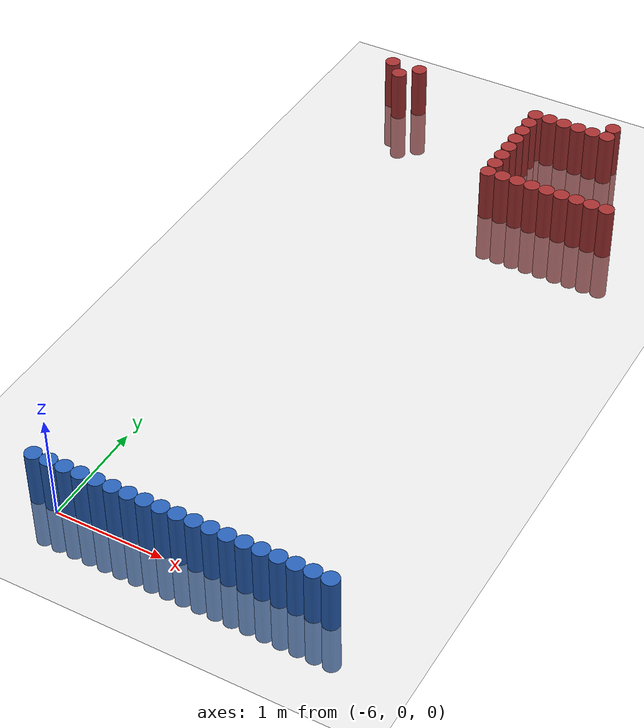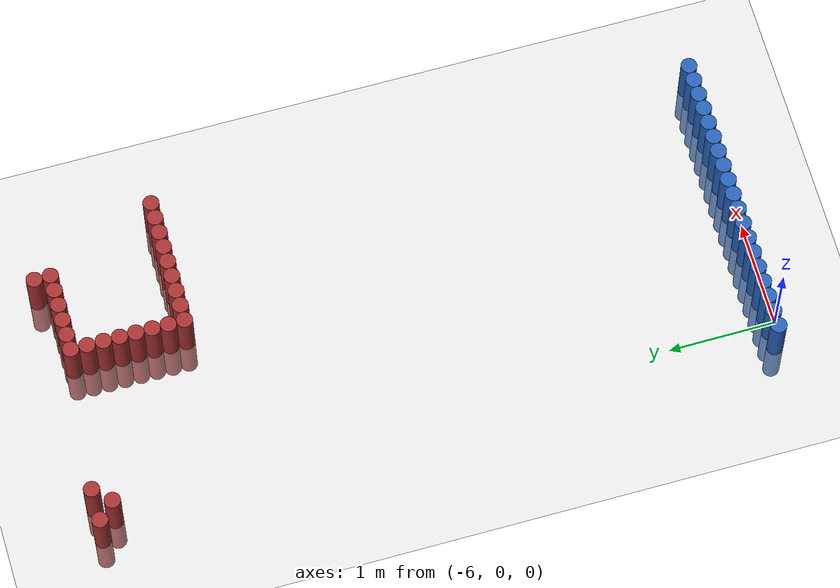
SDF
<sdf version="1.6">
 <world name="default">
  <model name="ground_plane">
   <static>1</static>
   <link name="link">
    <collision name="collision">
     <geometry><plane><normal>0 0 1</normal><size>100 100</size></plane></geometry>
     <surface><friction><ode><mu>100</mu><mu2>50</mu2></ode></friction></surface>
    </collision>
    <visual name="visual">
     <cast_shadows>0</cast_shadows>
     <geometry><plane><normal>0 0 1</normal><size>100 100</size></plane></geometry>
     <material>
      <script><uri>file://media/materials/scripts/gazebo.material</uri><name>Gazebo/Grey</name></script>
     </material>
    </visual>
   </link>
  </model>
  <model name="unit_cylinder_23">
   <static>1</static>
   <pose>-3.525000 0.075000 0.000000 0.000000 0.000000 0.000000</pose>
   <link name="link">
    <inertial>
     <mass>1</mass>
     <inertia><ixx>0.145833</ixx><ixy>0</ixy><ixz>0</ixz><iyy>0.145833</iyy><iyz>0</iyz><izz>0.125</izz></inertia>
    </inertial>
    <collision name="collision">
     <geometry><cylinder><radius>0.075000</radius><length>1</length></cylinder></geometry>
    </collision>
    <visual name="visual">
     <geometry><cylinder><radius>0.075000</radius><length>1</length></cylinder></geometry>
     <material>
      <ambient>0.152000 0.379000 0.720000 1</ambient>
      <diffuse>0.152000 0.379000 0.720000 1</diffuse>
     </material>
     <material>
      <script><name>Gazebo/Grey</name><uri>file://media/materials/scripts/gazebo.material</uri></script>
     </material>
    </visual>
   </link>
  </model>
  <model name="unit_cylinder_24">
   <static>1</static>
   <pose>-3.675000 0.075000 0.000000 0.000000 0.000000 0.000000</pose>
   <link name="link">
    <inertial>
     <mass>1</mass>
     <inertia><ixx>0.145833</ixx><ixy>0</ixy><ixz>0</ixz><iyy>0.145833</iyy><iyz>0</iyz><izz>0.125</izz></inertia>
    </inertial>
    <collision name="collision">
     <geometry><cylinder><radius>0.075000</radius><length>1</length></cylinder></geometry>
    </collision>
    <visual name="visual">
     <geometry><cylinder><radius>0.075000</radius><length>1</length></cylinder></geometry>
     <material>
      <ambient>0.152000 0.379000 0.720000 1</ambient>
      <diffuse>0.152000 0.379000 0.720000 1</diffuse>
     </material>
     <material>
      <script><name>Gazebo/Grey</name><uri>file://media/materials/scripts/gazebo.material</uri></script>
     </material>
    </visual>
   </link>
  </model>
  <model name="unit_cylinder_25">
   <static>1</static>
   <pose>-3.825000 0.075000 0.000000 0.000000 0.000000 0.000000</pose>
   <link name="link">
    <inertial>
     <mass>1</mass>
     <inertia><ixx>0.145833</ixx><ixy>0</ixy><ixz>0</ixz><iyy>0.145833</iyy><iyz>0</iyz><izz>0.125</izz></inertia>
    </inertial>
    <collision name="collision">
     <geometry><cylinder><radius>0.075000</radius><length>1</length></cylinder></geometry>
    </collision>
    <visual name="visual">
     <geometry><cylinder><radius>0.075000</radius><length>1</length></cylinder></geometry>
     <material>
      <ambient>0.152000 0.379000 0.720000 1</ambient>
      <diffuse>0.152000 0.379000 0.720000 1</diffuse>
     </material>
     <material>
      <script><name>Gazebo/Grey</name><uri>file://media/materials/scripts/gazebo.material</uri></script>
     </material>
    </visual>
   </link>
  </model>
  <model name="unit_cylinder_26">
   <static>1</static>
   <pose>-3.975000 0.075000 0.000000 0.000000 0.000000 0.000000</pose>
   <link name="link">
    <inertial>
     <mass>1</mass>
     <inertia><ixx>0.145833</ixx><ixy>0</ixy><ixz>0</ixz><iyy>0.145833</iyy><iyz>0</iyz><izz>0.125</izz></inertia>
    </inertial>
    <collision name="collision">
     <geometry><cylinder><radius>0.075000</radius><length>1</length></cylinder></geometry>
    </collision>
    <visual name="visual">
     <geometry><cylinder><radius>0.075000</radius><length>1</length></cylinder></geometry>
     <material>
      <ambient>0.152000 0.379000 0.720000 1</ambient>
      <diffuse>0.152000 0.379000 0.720000 1</diffuse>
     </material>
     <material>
      <script><name>Gazebo/Grey</name><uri>file://media/materials/scripts/gazebo.material</uri></script>
     </material>
    </visual>
   </link>
  </model>
  <model name="unit_cylinder_27">
   <static>1</static>
   <pose>-4.125000 0.075000 0.000000 0.000000 0.000000 0.000000</pose>
   <link name="link">
    <inertial>
     <mass>1</mass>
     <inertia><ixx>0.145833</ixx><ixy>0</ixy><ixz>0</ixz><iyy>0.145833</iyy><iyz>0</iyz><izz>0.125</izz></inertia>
    </inertial>
    <collision name="collision">
     <geometry><cylinder><radius>0.075000</radius><length>1</length></cylinder></geometry>
    </collision>
    <visual name="visual">
     <geometry><cylinder><radius>0.075000</radius><length>1</length></cylinder></geometry>
     <material>
      <ambient>0.152000 0.379000 0.720000 1</ambient>
      <diffuse>0.152000 0.379000 0.720000 1</diffuse>
     </material>
     <material>
      <script><name>Gazebo/Grey</name><uri>file://media/materials/scripts/gazebo.material</uri></script>
     </material>
    </visual>
   </link>
  </model>
  <model name="unit_cylinder_28">
   <static>1</static>
   <pose>-4.275000 0.075000 0.000000 0.000000 0.000000 0.000000</pose>
   <link name="link">
    <inertial>
     <mass>1</mass>
     <inertia><ixx>0.145833</ixx><ixy>0</ixy><ixz>0</ixz><iyy>0.145833</iyy><iyz>0</iyz><izz>0.125</izz></inertia>
    </inertial>
    <collision name="collision">
     <geometry><cylinder><radius>0.075000</radius><length>1</length></cylinder></geometry>
    </collision>
    <visual name="visual">
     <geometry><cylinder><radius>0.075000</radius><length>1</length></cylinder></geometry>
     <material>
      <ambient>0.152000 0.379000 0.720000 1</ambient>
      <diffuse>0.152000 0.379000 0.720000 1</diffuse>
     </material>
     <material>
      <script><name>Gazebo/Grey</name><uri>file://media/materials/scripts/gazebo.material</uri></script>
     </material>
    </visual>
   </link>
  </model>
  <model name="unit_cylinder_29">
   <static>1</static>
   <pose>-4.425000 0.075000 0.000000 0.000000 0.000000 0.000000</pose>
   <link name="link">
    <inertial>
     <mass>1</mass>
     <inertia><ixx>0.145833</ixx><ixy>0</ixy><ixz>0</ixz><iyy>0.145833</iyy><iyz>0</iyz><izz>0.125</izz></inertia>
    </inertial>
    <collision name="collision">
     <geometry><cylinder><radius>0.075000</radius><length>1</length></cylinder></geometry>
    </collision>
    <visual name="visual">
     <geometry><cylinder><radius>0.075000</radius><length>1</length></cylinder></geometry>
     <material>
      <ambient>0.152000 0.379000 0.720000 1</ambient>
      <diffuse>0.152000 0.379000 0.720000 1</diffuse>
     </material>
     <material>
      <script><name>Gazebo/Grey</name><uri>file://media/materials/scripts/gazebo.material</uri></script>
     </material>
    </visual>
   </link>
  </model>
  <model name="unit_cylinder_30">
   <static>1</static>
   <pose>-4.575000 0.075000 0.000000 0.000000 0.000000 0.000000</pose>
   <link name="link">
    <inertial>
     <mass>1</mass>
     <inertia><ixx>0.145833</ixx><ixy>0</ixy><ixz>0</ixz><iyy>0.145833</iyy><iyz>0</iyz><izz>0.125</izz></inertia>
    </inertial>
    <collision name="collision">
     <geometry><cylinder><radius>0.075000</radius><length>1</length></cylinder></geometry>
    </collision>
    <visual name="visual">
     <geometry><cylinder><radius>0.075000</radius><length>1</length></cylinder></geometry>
     <material>
      <ambient>0.152000 0.379000 0.720000 1</ambient>
      <diffuse>0.152000 0.379000 0.720000 1</diffuse>
     </material>
     <material>
      <script><name>Gazebo/Grey</name><uri>file://media/materials/scripts/gazebo.material</uri></script>
     </material>
    </visual>
   </link>
  </model>
  <model name="unit_cylinder_31">
   <static>1</static>
   <pose>-4.725000 0.075000 0.000000 0.000000 0.000000 0.000000</pose>
   <link name="link">
    <inertial>
     <mass>1</mass>
     <inertia><ixx>0.145833</ixx><ixy>0</ixy><ixz>0</ixz><iyy>0.145833</iyy><iyz>0</iyz><izz>0.125</izz></inertia>
    </inertial>
    <collision name="collision">
     <geometry><cylinder><radius>0.075000</radius><length>1</length></cylinder></geometry>
    </collision>
    <visual name="visual">
     <geometry><cylinder><radius>0.075000</radius><length>1</length></cylinder></geometry>
     <material>
      <ambient>0.152000 0.379000 0.720000 1</ambient>
      <diffuse>0.152000 0.379000 0.720000 1</diffuse>
     </material>
     <material>
      <script><name>Gazebo/Grey</name><uri>file://media/materials/scripts/gazebo.material</uri></script>
     </material>
    </visual>
   </link>
  </model>
  <model name="unit_cylinder_32">
   <static>1</static>
   <pose>-4.875000 0.075000 0.000000 0.000000 0.000000 0.000000</pose>
   <link name="link">
    <inertial>
     <mass>1</mass>
     <inertia><ixx>0.145833</ixx><ixy>0</ixy><ixz>0</ixz><iyy>0.145833</iyy><iyz>0</iyz><izz>0.125</izz></inertia>
    </inertial>
    <collision name="collision">
     <geometry><cylinder><radius>0.075000</radius><length>1</length></cylinder></geometry>
    </collision>
    <visual name="visual">
     <geometry><cylinder><radius>0.075000</radius><length>1</length></cylinder></geometry>
     <material>
      <ambient>0.152000 0.379000 0.720000 1</ambient>
      <diffuse>0.152000 0.379000 0.720000 1</diffuse>
     </material>
     <material>
      <script><name>Gazebo/Grey</name><uri>file://media/materials/scripts/gazebo.material</uri></script>
     </material>
    </visual>
   </link>
  </model>
  <model name="unit_cylinder_33">
   <static>1</static>
   <pose>-5.025000 0.075000 0.000000 0.000000 0.000000 0.000000</pose>
   <link name="link">
    <inertial>
     <mass>1</mass>
     <inertia><ixx>0.145833</ixx><ixy>0</ixy><ixz>0</ixz><iyy>0.145833</iyy><iyz>0</iyz><izz>0.125</izz></inertia>
    </inertial>
    <collision name="collision">
     <geometry><cylinder><radius>0.075000</radius><length>1</length></cylinder></geometry>
    </collision>
    <visual name="visual">
     <geometry><cylinder><radius>0.075000</radius><length>1</length></cylinder></geometry>
     <material>
      <ambient>0.152000 0.379000 0.720000 1</ambient>
      <diffuse>0.152000 0.379000 0.720000 1</diffuse>
     </material>
     <material>
      <script><name>Gazebo/Grey</name><uri>file://media/materials/scripts/gazebo.material</uri></script>
     </material>
    </visual>
   </link>
  </model>
  <model name="unit_cylinder_34">
   <static>1</static>
   <pose>-5.175000 0.075000 0.000000 0.000000 0.000000 0.000000</pose>
   <link name="link">
    <inertial>
     <mass>1</mass>
     <inertia><ixx>0.145833</ixx><ixy>0</ixy><ixz>0</ixz><iyy>0.145833</iyy><iyz>0</iyz><izz>0.125</izz></inertia>
    </inertial>
    <collision name="collision">
     <geometry><cylinder><radius>0.075000</radius><length>1</length></cylinder></geometry>
    </collision>
    <visual name="visual">
     <geometry><cylinder><radius>0.075000</radius><length>1</length></cylinder></geometry>
     <material>
      <ambient>0.152000 0.379000 0.720000 1</ambient>
      <diffuse>0.152000 0.379000 0.720000 1</diffuse>
     </material>
     <material>
      <script><name>Gazebo/Grey</name><uri>file://media/materials/scripts/gazebo.material</uri></script>
     </material>
    </visual>
   </link>
  </model>
  <model name="unit_cylinder_35">
   <static>1</static>
   <pose>-5.325000 0.075000 0.000000 0.000000 0.000000 0.000000</pose>
   <link name="link">
    <inertial>
     <mass>1</mass>
     <inertia><ixx>0.145833</ixx><ixy>0</ixy><ixz>0</ixz><iyy>0.145833</iyy><iyz>0</iyz><izz>0.125</izz></inertia>
    </inertial>
    <collision name="collision">
     <geometry><cylinder><radius>0.075000</radius><length>1</length></cylinder></geometry>
    </collision>
    <visual name="visual">
     <geometry><cylinder><radius>0.075000</radius><length>1</length></cylinder></geometry>
     <material>
      <ambient>0.152000 0.379000 0.720000 1</ambient>
      <diffuse>0.152000 0.379000 0.720000 1</diffuse>
     </material>
     <material>
      <script><name>Gazebo/Grey</name><uri>file://media/materials/scripts/gazebo.material</uri></script>
     </material>
    </visual>
   </link>
  </model>
  <model name="unit_cylinder_36">
   <static>1</static>
   <pose>-5.475000 0.075000 0.000000 0.000000 0.000000 0.000000</pose>
   <link name="link">
    <inertial>
     <mass>1</mass>
     <inertia><ixx>0.145833</ixx><ixy>0</ixy><ixz>0</ixz><iyy>0.145833</iyy><iyz>0</iyz><izz>0.125</izz></inertia>
    </inertial>
    <collision name="collision">
     <geometry><cylinder><radius>0.075000</radius><length>1</length></cylinder></geometry>
    </collision>
    <visual name="visual">
     <geometry><cylinder><radius>0.075000</radius><length>1</length></cylinder></geometry>
     <material>
      <ambient>0.152000 0.379000 0.720000 1</ambient>
      <diffuse>0.152000 0.379000 0.720000 1</diffuse>
     </material>
     <material>
      <script><name>Gazebo/Grey</name><uri>file://media/materials/scripts/gazebo.material</uri></script>
     </material>
    </visual>
   </link>
  </model>
  <model name="unit_cylinder_37">
   <static>1</static>
   <pose>-5.625000 0.075000 0.000000 0.000000 0.000000 0.000000</pose>
   <link name="link">
    <inertial>
     <mass>1</mass>
     <inertia><ixx>0.145833</ixx><ixy>0</ixy><ixz>0</ixz><iyy>0.145833</iyy><iyz>0</iyz><izz>0.125</izz></inertia>
    </inertial>
    <collision name="collision">
     <geometry><cylinder><radius>0.075000</radius><length>1</length></cylinder></geometry>
    </collision>
    <visual name="visual">
     <geometry><cylinder><radius>0.075000</radius><length>1</length></cylinder></geometry>
     <material>
      <ambient>0.152000 0.379000 0.720000 1</ambient>
      <diffuse>0.152000 0.379000 0.720000 1</diffuse>
     </material>
     <material>
      <script><name>Gazebo/Grey</name><uri>file://media/materials/scripts/gazebo.material</uri></script>
     </material>
    </visual>
   </link>
  </model>
  <model name="unit_cylinder_38">
   <static>1</static>
   <pose>-5.775000 0.075000 0.000000 0.000000 0.000000 0.000000</pose>
   <link name="link">
    <inertial>
     <mass>1</mass>
     <inertia><ixx>0.145833</ixx><ixy>0</ixy><ixz>0</ixz><iyy>0.145833</iyy><iyz>0</iyz><izz>0.125</izz></inertia>
    </inertial>
    <collision name="collision">
     <geometry><cylinder><radius>0.075000</radius><length>1</length></cylinder></geometry>
    </collision>
    <visual name="visual">
     <geometry><cylinder><radius>0.075000</radius><length>1</length></cylinder></geometry>
     <material>
      <ambient>0.152000 0.379000 0.720000 1</ambient>
      <diffuse>0.152000 0.379000 0.720000 1</diffuse>
     </material>
     <material>
      <script><name>Gazebo/Grey</name><uri>file://media/materials/scripts/gazebo.material</uri></script>
     </material>
    </visual>
   </link>
  </model>
  <model name="unit_cylinder_39">
   <static>1</static>
   <pose>-5.925000 0.075000 0.000000 0.000000 0.000000 0.000000</pose>
   <link name="link">
    <inertial>
     <mass>1</mass>
     <inertia><ixx>0.145833</ixx><ixy>0</ixy><ixz>0</ixz><iyy>0.145833</iyy><iyz>0</iyz><izz>0.125</izz></inertia>
    </inertial>
    <collision name="collision">
     <geometry><cylinder><radius>0.075000</radius><length>1</length></cylinder></geometry>
    </collision>
    <visual name="visual">
     <geometry><cylinder><radius>0.075000</radius><length>1</length></cylinder></geometry>
     <material>
      <ambient>0.152000 0.379000 0.720000 1</ambient>
      <diffuse>0.152000 0.379000 0.720000 1</diffuse>
     </material>
     <material>
      <script><name>Gazebo/Grey</name><uri>file://media/materials/scripts/gazebo.material</uri></script>
     </material>
    </visual>
   </link>
  </model>
  <model name="unit_cylinder_40">
   <static>1</static>
   <pose>-6.075000 0.075000 0.000000 0.000000 0.000000 0.000000</pose>
   <link name="link">
    <inertial>
     <mass>1</mass>
     <inertia><ixx>0.145833</ixx><ixy>0</ixy><ixz>0</ixz><iyy>0.145833</iyy><iyz>0</iyz><izz>0.125</izz></inertia>
    </inertial>
    <collision name="collision">
     <geometry><cylinder><radius>0.075000</radius><length>1</length></cylinder></geometry>
    </collision>
    <visual name="visual">
     <geometry><cylinder><radius>0.075000</radius><length>1</length></cylinder></geometry>
     <material>
      <ambient>0.152000 0.379000 0.720000 1</ambient>
      <diffuse>0.152000 0.379000 0.720000 1</diffuse>
     </material>
     <material>
      <script><name>Gazebo/Grey</name><uri>file://media/materials/scripts/gazebo.material</uri></script>
     </material>
    </visual>
   </link>
  </model>
  <model name="unit_cylinder_41">
   <static>1</static>
   <pose>-6.225000 0.075000 0.000000 0.000000 0.000000 0.000000</pose>
   <link name="link">
    <inertial>
     <mass>1</mass>
     <inertia><ixx>0.145833</ixx><ixy>0</ixy><ixz>0</ixz><iyy>0.145833</iyy><iyz>0</iyz><izz>0.125</izz></inertia>
    </inertial>
    <collision name="collision">
     <geometry><cylinder><radius>0.075000</radius><length>1</length></cylinder></geometry>
    </collision>
    <visual name="visual">
     <geometry><cylinder><radius>0.075000</radius><length>1</length></cylinder></geometry>
     <material>
      <ambient>0.152000 0.379000 0.720000 1</ambient>
      <diffuse>0.152000 0.379000 0.720000 1</diffuse>
     </material>
     <material>
      <script><name>Gazebo/Grey</name><uri>file://media/materials/scripts/gazebo.material</uri></script>
     </material>
    </visual>
   </link>
  </model>
  <model name="unit_cylinder_227">
   <static>1</static>
   <pose>-6.375000 6.375000 0.000000 0.000000 0.000000 0.000000</pose>
   <link name="link">
    <inertial>
     <mass>1</mass>
     <inertia><ixx>0.145833</ixx><ixy>0</ixy><ixz>0</ixz><iyy>0.145833</iyy><iyz>0</iyz><izz>0.125</izz></inertia>
    </inertial>
    <collision name="collision">
     <geometry><cylinder><radius>0.075000</radius><length>1</length></cylinder></geometry>
    </collision>
    <visual name="visual">
     <geometry><cylinder><radius>0.075000</radius><length>1</length></cylinder></geometry>
     <material>
      <ambient>0.648000 0.192000 0.192000 1</ambient>
      <diffuse>0.648000 0.192000 0.192000 1</diffuse>
     </material>
     <material>
      <script><name>Gazebo/Grey</name><uri>file://media/materials/scripts/gazebo.material</uri></script>
     </material>
    </visual>
   </link>
  </model>
  <model name="unit_cylinder_233">
   <static>1</static>
   <pose>-6.225000 6.225000 0.000000 0.000000 0.000000 0.000000</pose>
   <link name="link">
    <inertial>
     <mass>1</mass>
     <inertia><ixx>0.145833</ixx><ixy>0</ixy><ixz>0</ixz><iyy>0.145833</iyy><iyz>0</iyz><izz>0.125</izz></inertia>
    </inertial>
    <collision name="collision">
     <geometry><cylinder><radius>0.075000</radius><length>1</length></cylinder></geometry>
    </collision>
    <visual name="visual">
     <geometry><cylinder><radius>0.075000</radius><length>1</length></cylinder></geometry>
     <material>
      <ambient>0.648000 0.192000 0.192000 1</ambient>
      <diffuse>0.648000 0.192000 0.192000 1</diffuse>
     </material>
     <material>
      <script><name>Gazebo/Grey</name><uri>file://media/materials/scripts/gazebo.material</uri></script>
     </material>
    </visual>
   </link>
  </model>
  <model name="unit_cylinder_247">
   <static>1</static>
   <pose>-6.075000 6.375000 0.000000 0.000000 0.000000 0.000000</pose>
   <link name="link">
    <inertial>
     <mass>1</mass>
     <inertia><ixx>0.145833</ixx><ixy>0</ixy><ixz>0</ixz><iyy>0.145833</iyy><iyz>0</iyz><izz>0.125</izz></inertia>
    </inertial>
    <collision name="collision">
     <geometry><cylinder><radius>0.075000</radius><length>1</length></cylinder></geometry>
    </collision>
    <visual name="visual">
     <geometry><cylinder><radius>0.075000</radius><length>1</length></cylinder></geometry>
     <material>
      <ambient>0.648000 0.192000 0.192000 1</ambient>
      <diffuse>0.648000 0.192000 0.192000 1</diffuse>
     </material>
     <material>
      <script><name>Gazebo/Grey</name><uri>file://media/materials/scripts/gazebo.material</uri></script>
     </material>
    </visual>
   </link>
  </model>
  <model name="unit_cylinder_317">
   <static>1</static>
   <pose>-4.725000 5.175000 0.000000 0.000000 0.000000 0.000000</pose>
   <link name="link">
    <inertial>
     <mass>1</mass>
     <inertia><ixx>0.145833</ixx><ixy>0</ixy><ixz>0</ixz><iyy>0.145833</iyy><iyz>0</iyz><izz>0.125</izz></inertia>
    </inertial>
    <collision name="collision">
     <geometry><cylinder><radius>0.075000</radius><length>1</length></cylinder></geometry>
    </collision>
    <visual name="visual">
     <geometry><cylinder><radius>0.075000</radius><length>1</length></cylinder></geometry>
     <material>
      <ambient>0.648000 0.192000 0.192000 1</ambient>
      <diffuse>0.648000 0.192000 0.192000 1</diffuse>
     </material>
     <material>
      <script><name>Gazebo/Grey</name><uri>file://media/materials/scripts/gazebo.material</uri></script>
     </material>
    </visual>
   </link>
  </model>
  <model name="unit_cylinder_318">
   <static>1</static>
   <pose>-4.725000 5.325000 0.000000 0.000000 0.000000 0.000000</pose>
   <link name="link">
    <inertial>
     <mass>1</mass>
     <inertia><ixx>0.145833</ixx><ixy>0</ixy><ixz>0</ixz><iyy>0.145833</iyy><iyz>0</iyz><izz>0.125</izz></inertia>
    </inertial>
    <collision name="collision">
     <geometry><cylinder><radius>0.075000</radius><length>1</length></cylinder></geometry>
    </collision>
    <visual name="visual">
     <geometry><cylinder><radius>0.075000</radius><length>1</length></cylinder></geometry>
     <material>
      <ambient>0.648000 0.192000 0.192000 1</ambient>
      <diffuse>0.648000 0.192000 0.192000 1</diffuse>
     </material>
     <material>
      <script><name>Gazebo/Grey</name><uri>file://media/materials/scripts/gazebo.material</uri></script>
     </material>
    </visual>
   </link>
  </model>
  <model name="unit_cylinder_319">
   <static>1</static>
   <pose>-4.725000 5.475000 0.000000 0.000000 0.000000 0.000000</pose>
   <link name="link">
    <inertial>
     <mass>1</mass>
     <inertia><ixx>0.145833</ixx><ixy>0</ixy><ixz>0</ixz><iyy>0.145833</iyy><iyz>0</iyz><izz>0.125</izz></inertia>
    </inertial>
    <collision name="collision">
     <geometry><cylinder><radius>0.075000</radius><length>1</length></cylinder></geometry>
    </collision>
    <visual name="visual">
     <geometry><cylinder><radius>0.075000</radius><length>1</length></cylinder></geometry>
     <material>
      <ambient>0.648000 0.192000 0.192000 1</ambient>
      <diffuse>0.648000 0.192000 0.192000 1</diffuse>
     </material>
     <material>
      <script><name>Gazebo/Grey</name><uri>file://media/materials/scripts/gazebo.material</uri></script>
     </material>
    </visual>
   </link>
  </model>
  <model name="unit_cylinder_320">
   <static>1</static>
   <pose>-4.725000 5.625000 0.000000 0.000000 0.000000 0.000000</pose>
   <link name="link">
    <inertial>
     <mass>1</mass>
     <inertia><ixx>0.145833</ixx><ixy>0</ixy><ixz>0</ixz><iyy>0.145833</iyy><iyz>0</iyz><izz>0.125</izz></inertia>
    </inertial>
    <collision name="collision">
     <geometry><cylinder><radius>0.075000</radius><length>1</length></cylinder></geometry>
    </collision>
    <visual name="visual">
     <geometry><cylinder><radius>0.075000</radius><length>1</length></cylinder></geometry>
     <material>
      <ambient>0.648000 0.192000 0.192000 1</ambient>
      <diffuse>0.648000 0.192000 0.192000 1</diffuse>
     </material>
     <material>
      <script><name>Gazebo/Grey</name><uri>file://media/materials/scripts/gazebo.material</uri></script>
     </material>
    </visual>
   </link>
  </model>
  <model name="unit_cylinder_321">
   <static>1</static>
   <pose>-4.725000 5.775000 0.000000 0.000000 0.000000 0.000000</pose>
   <link name="link">
    <inertial>
     <mass>1</mass>
     <inertia><ixx>0.145833</ixx><ixy>0</ixy><ixz>0</ixz><iyy>0.145833</iyy><iyz>0</iyz><izz>0.125</izz></inertia>
    </inertial>
    <collision name="collision">
     <geometry><cylinder><radius>0.075000</radius><length>1</length></cylinder></geometry>
    </collision>
    <visual name="visual">
     <geometry><cylinder><radius>0.075000</radius><length>1</length></cylinder></geometry>
     <material>
      <ambient>0.648000 0.192000 0.192000 1</ambient>
      <diffuse>0.648000 0.192000 0.192000 1</diffuse>
     </material>
     <material>
      <script><name>Gazebo/Grey</name><uri>file://media/materials/scripts/gazebo.material</uri></script>
     </material>
    </visual>
   </link>
  </model>
  <model name="unit_cylinder_322">
   <static>1</static>
   <pose>-4.725000 5.925000 0.000000 0.000000 0.000000 0.000000</pose>
   <link name="link">
    <inertial>
     <mass>1</mass>
     <inertia><ixx>0.145833</ixx><ixy>0</ixy><ixz>0</ixz><iyy>0.145833</iyy><iyz>0</iyz><izz>0.125</izz></inertia>
    </inertial>
    <collision name="collision">
     <geometry><cylinder><radius>0.075000</radius><length>1</length></cylinder></geometry>
    </collision>
    <visual name="visual">
     <geometry><cylinder><radius>0.075000</radius><length>1</length></cylinder></geometry>
     <material>
      <ambient>0.648000 0.192000 0.192000 1</ambient>
      <diffuse>0.648000 0.192000 0.192000 1</diffuse>
     </material>
     <material>
      <script><name>Gazebo/Grey</name><uri>file://media/materials/scripts/gazebo.material</uri></script>
     </material>
    </visual>
   </link>
  </model>
  <model name="unit_cylinder_323">
   <static>1</static>
   <pose>-4.725000 6.075000 0.000000 0.000000 0.000000 0.000000</pose>
   <link name="link">
    <inertial>
     <mass>1</mass>
     <inertia><ixx>0.145833</ixx><ixy>0</ixy><ixz>0</ixz><iyy>0.145833</iyy><iyz>0</iyz><izz>0.125</izz></inertia>
    </inertial>
    <collision name="collision">
     <geometry><cylinder><radius>0.075000</radius><length>1</length></cylinder></geometry>
    </collision>
    <visual name="visual">
     <geometry><cylinder><radius>0.075000</radius><length>1</length></cylinder></geometry>
     <material>
      <ambient>0.648000 0.192000 0.192000 1</ambient>
      <diffuse>0.648000 0.192000 0.192000 1</diffuse>
     </material>
     <material>
      <script><name>Gazebo/Grey</name><uri>file://media/materials/scripts/gazebo.material</uri></script>
     </material>
    </visual>
   </link>
  </model>
  <model name="unit_cylinder_324">
   <static>1</static>
   <pose>-4.725000 6.225000 0.000000 0.000000 0.000000 0.000000</pose>
   <link name="link">
    <inertial>
     <mass>1</mass>
     <inertia><ixx>0.145833</ixx><ixy>0</ixy><ixz>0</ixz><iyy>0.145833</iyy><iyz>0</iyz><izz>0.125</izz></inertia>
    </inertial>
    <collision name="collision">
     <geometry><cylinder><radius>0.075000</radius><length>1</length></cylinder></geometry>
    </collision>
    <visual name="visual">
     <geometry><cylinder><radius>0.075000</radius><length>1</length></cylinder></geometry>
     <material>
      <ambient>0.648000 0.192000 0.192000 1</ambient>
      <diffuse>0.648000 0.192000 0.192000 1</diffuse>
     </material>
     <material>
      <script><name>Gazebo/Grey</name><uri>file://media/materials/scripts/gazebo.material</uri></script>
     </material>
    </visual>
   </link>
  </model>
  <model name="unit_cylinder_325">
   <static>1</static>
   <pose>-4.575000 5.175000 0.000000 0.000000 0.000000 0.000000</pose>
   <link name="link">
    <inertial>
     <mass>1</mass>
     <inertia><ixx>0.145833</ixx><ixy>0</ixy><ixz>0</ixz><iyy>0.145833</iyy><iyz>0</iyz><izz>0.125</izz></inertia>
    </inertial>
    <collision name="collision">
     <geometry><cylinder><radius>0.075000</radius><length>1</length></cylinder></geometry>
    </collision>
    <visual name="visual">
     <geometry><cylinder><radius>0.075000</radius><length>1</length></cylinder></geometry>
     <material>
      <ambient>0.648000 0.192000 0.192000 1</ambient>
      <diffuse>0.648000 0.192000 0.192000 1</diffuse>
     </material>
     <material>
      <script><name>Gazebo/Grey</name><uri>file://media/materials/scripts/gazebo.material</uri></script>
     </material>
    </visual>
   </link>
  </model>
  <model name="unit_cylinder_326">
   <static>1</static>
   <pose>-4.575000 6.225000 0.000000 0.000000 0.000000 0.000000</pose>
   <link name="link">
    <inertial>
     <mass>1</mass>
     <inertia><ixx>0.145833</ixx><ixy>0</ixy><ixz>0</ixz><iyy>0.145833</iyy><iyz>0</iyz><izz>0.125</izz></inertia>
    </inertial>
    <collision name="collision">
     <geometry><cylinder><radius>0.075000</radius><length>1</length></cylinder></geometry>
    </collision>
    <visual name="visual">
     <geometry><cylinder><radius>0.075000</radius><length>1</length></cylinder></geometry>
     <material>
      <ambient>0.648000 0.192000 0.192000 1</ambient>
      <diffuse>0.648000 0.192000 0.192000 1</diffuse>
     </material>
     <material>
      <script><name>Gazebo/Grey</name><uri>file://media/materials/scripts/gazebo.material</uri></script>
     </material>
    </visual>
   </link>
  </model>
  <model name="unit_cylinder_327">
   <static>1</static>
   <pose>-4.425000 5.175000 0.000000 0.000000 0.000000 0.000000</pose>
   <link name="link">
    <inertial>
     <mass>1</mass>
     <inertia><ixx>0.145833</ixx><ixy>0</ixy><ixz>0</ixz><iyy>0.145833</iyy><iyz>0</iyz><izz>0.125</izz></inertia>
    </inertial>
    <collision name="collision">
     <geometry><cylinder><radius>0.075000</radius><length>1</length></cylinder></geometry>
    </collision>
    <visual name="visual">
     <geometry><cylinder><radius>0.075000</radius><length>1</length></cylinder></geometry>
     <material>
      <ambient>0.648000 0.192000 0.192000 1</ambient>
      <diffuse>0.648000 0.192000 0.192000 1</diffuse>
     </material>
     <material>
      <script><name>Gazebo/Grey</name><uri>file://media/materials/scripts/gazebo.material</uri></script>
     </material>
    </visual>
   </link>
  </model>
  <model name="unit_cylinder_328">
   <static>1</static>
   <pose>-4.425000 6.225000 0.000000 0.000000 0.000000 0.000000</pose>
   <link name="link">
    <inertial>
     <mass>1</mass>
     <inertia><ixx>0.145833</ixx><ixy>0</ixy><ixz>0</ixz><iyy>0.145833</iyy><iyz>0</iyz><izz>0.125</izz></inertia>
    </inertial>
    <collision name="collision">
     <geometry><cylinder><radius>0.075000</radius><length>1</length></cylinder></geometry>
    </collision>
    <visual name="visual">
     <geometry><cylinder><radius>0.075000</radius><length>1</length></cylinder></geometry>
     <material>
      <ambient>0.648000 0.192000 0.192000 1</ambient>
      <diffuse>0.648000 0.192000 0.192000 1</diffuse>
     </material>
     <material>
      <script><name>Gazebo/Grey</name><uri>file://media/materials/scripts/gazebo.material</uri></script>
     </material>
    </visual>
   </link>
  </model>
  <model name="unit_cylinder_329">
   <static>1</static>
   <pose>-4.275000 5.175000 0.000000 0.000000 0.000000 0.000000</pose>
   <link name="link">
    <inertial>
     <mass>1</mass>
     <inertia><ixx>0.145833</ixx><ixy>0</ixy><ixz>0</ixz><iyy>0.145833</iyy><iyz>0</iyz><izz>0.125</izz></inertia>
    </inertial>
    <collision name="collision">
     <geometry><cylinder><radius>0.075000</radius><length>1</length></cylinder></geometry>
    </collision>
    <visual name="visual">
     <geometry><cylinder><radius>0.075000</radius><length>1</length></cylinder></geometry>
     <material>
      <ambient>0.648000 0.192000 0.192000 1</ambient>
      <diffuse>0.648000 0.192000 0.192000 1</diffuse>
     </material>
     <material>
      <script><name>Gazebo/Grey</name><uri>file://media/materials/scripts/gazebo.material</uri></script>
     </material>
    </visual>
   </link>
  </model>
  <model name="unit_cylinder_330">
   <static>1</static>
   <pose>-4.275000 6.225000 0.000000 0.000000 0.000000 0.000000</pose>
   <link name="link">
    <inertial>
     <mass>1</mass>
     <inertia><ixx>0.145833</ixx><ixy>0</ixy><ixz>0</ixz><iyy>0.145833</iyy><iyz>0</iyz><izz>0.125</izz></inertia>
    </inertial>
    <collision name="collision">
     <geometry><cylinder><radius>0.075000</radius><length>1</length></cylinder></geometry>
    </collision>
    <visual name="visual">
     <geometry><cylinder><radius>0.075000</radius><length>1</length></cylinder></geometry>
     <material>
      <ambient>0.648000 0.192000 0.192000 1</ambient>
      <diffuse>0.648000 0.192000 0.192000 1</diffuse>
     </material>
     <material>
      <script><name>Gazebo/Grey</name><uri>file://media/materials/scripts/gazebo.material</uri></script>
     </material>
    </visual>
   </link>
  </model>
  <model name="unit_cylinder_331">
   <static>1</static>
   <pose>-4.125000 5.175000 0.000000 0.000000 0.000000 0.000000</pose>
   <link name="link">
    <inertial>
     <mass>1</mass>
     <inertia><ixx>0.145833</ixx><ixy>0</ixy><ixz>0</ixz><iyy>0.145833</iyy><iyz>0</iyz><izz>0.125</izz></inertia>
    </inertial>
    <collision name="collision">
     <geometry><cylinder><radius>0.075000</radius><length>1</length></cylinder></geometry>
    </collision>
    <visual name="visual">
     <geometry><cylinder><radius>0.075000</radius><length>1</length></cylinder></geometry>
     <material>
      <ambient>0.648000 0.192000 0.192000 1</ambient>
      <diffuse>0.648000 0.192000 0.192000 1</diffuse>
     </material>
     <material>
      <script><name>Gazebo/Grey</name><uri>file://media/materials/scripts/gazebo.material</uri></script>
     </material>
    </visual>
   </link>
  </model>
  <model name="unit_cylinder_332">
   <static>1</static>
   <pose>-4.125000 6.225000 0.000000 0.000000 0.000000 0.000000</pose>
   <link name="link">
    <inertial>
     <mass>1</mass>
     <inertia><ixx>0.145833</ixx><ixy>0</ixy><ixz>0</ixz><iyy>0.145833</iyy><iyz>0</iyz><izz>0.125</izz></inertia>
    </inertial>
    <collision name="collision">
     <geometry><cylinder><radius>0.075000</radius><length>1</length></cylinder></geometry>
    </collision>
    <visual name="visual">
     <geometry><cylinder><radius>0.075000</radius><length>1</length></cylinder></geometry>
     <material>
      <ambient>0.648000 0.192000 0.192000 1</ambient>
      <diffuse>0.648000 0.192000 0.192000 1</diffuse>
     </material>
     <material>
      <script><name>Gazebo/Grey</name><uri>file://media/materials/scripts/gazebo.material</uri></script>
     </material>
    </visual>
   </link>
  </model>
  <model name="unit_cylinder_333">
   <static>1</static>
   <pose>-3.975000 5.175000 0.000000 0.000000 0.000000 0.000000</pose>
   <link name="link">
    <inertial>
     <mass>1</mass>
     <inertia><ixx>0.145833</ixx><ixy>0</ixy><ixz>0</ixz><iyy>0.145833</iyy><iyz>0</iyz><izz>0.125</izz></inertia>
    </inertial>
    <collision name="collision">
     <geometry><cylinder><radius>0.075000</radius><length>1</length></cylinder></geometry>
    </collision>
    <visual name="visual">
     <geometry><cylinder><radius>0.075000</radius><length>1</length></cylinder></geometry>
     <material>
      <ambient>0.648000 0.192000 0.192000 1</ambient>
      <diffuse>0.648000 0.192000 0.192000 1</diffuse>
     </material>
     <material>
      <script><name>Gazebo/Grey</name><uri>file://media/materials/scripts/gazebo.material</uri></script>
     </material>
    </visual>
   </link>
  </model>
  <model name="unit_cylinder_334">
   <static>1</static>
   <pose>-3.975000 6.225000 0.000000 0.000000 0.000000 0.000000</pose>
   <link name="link">
    <inertial>
     <mass>1</mass>
     <inertia><ixx>0.145833</ixx><ixy>0</ixy><ixz>0</ixz><iyy>0.145833</iyy><iyz>0</iyz><izz>0.125</izz></inertia>
    </inertial>
    <collision name="collision">
     <geometry><cylinder><radius>0.075000</radius><length>1</length></cylinder></geometry>
    </collision>
    <visual name="visual">
     <geometry><cylinder><radius>0.075000</radius><length>1</length></cylinder></geometry>
     <material>
      <ambient>0.648000 0.192000 0.192000 1</ambient>
      <diffuse>0.648000 0.192000 0.192000 1</diffuse>
     </material>
     <material>
      <script><name>Gazebo/Grey</name><uri>file://media/materials/scripts/gazebo.material</uri></script>
     </material>
    </visual>
   </link>
  </model>
  <model name="unit_cylinder_335">
   <static>1</static>
   <pose>-3.975000 6.375000 0.000000 0.000000 0.000000 0.000000</pose>
   <link name="link">
    <inertial>
     <mass>1</mass>
     <inertia><ixx>0.145833</ixx><ixy>0</ixy><ixz>0</ixz><iyy>0.145833</iyy><iyz>0</iyz><izz>0.125</izz></inertia>
    </inertial>
    <collision name="collision">
     <geometry><cylinder><radius>0.075000</radius><length>1</length></cylinder></geometry>
    </collision>
    <visual name="visual">
     <geometry><cylinder><radius>0.075000</radius><length>1</length></cylinder></geometry>
     <material>
      <ambient>0.648000 0.192000 0.192000 1</ambient>
      <diffuse>0.648000 0.192000 0.192000 1</diffuse>
     </material>
     <material>
      <script><name>Gazebo/Grey</name><uri>file://media/materials/scripts/gazebo.material</uri></script>
     </material>
    </visual>
   </link>
  </model>
  <model name="unit_cylinder_337">
   <static>1</static>
   <pose>-3.825000 5.175000 0.000000 0.000000 0.000000 0.000000</pose>
   <link name="link">
    <inertial>
     <mass>1</mass>
     <inertia><ixx>0.145833</ixx><ixy>0</ixy><ixz>0</ixz><iyy>0.145833</iyy><iyz>0</iyz><izz>0.125</izz></inertia>
    </inertial>
    <collision name="collision">
     <geometry><cylinder><radius>0.075000</radius><length>1</length></cylinder></geometry>
    </collision>
    <visual name="visual">
     <geometry><cylinder><radius>0.075000</radius><length>1</length></cylinder></geometry>
     <material>
      <ambient>0.648000 0.192000 0.192000 1</ambient>
      <diffuse>0.648000 0.192000 0.192000 1</diffuse>
     </material>
     <material>
      <script><name>Gazebo/Grey</name><uri>file://media/materials/scripts/gazebo.material</uri></script>
     </material>
    </visual>
   </link>
  </model>
  <model name="unit_cylinder_339">
   <static>1</static>
   <pose>-3.675000 5.175000 0.000000 0.000000 0.000000 0.000000</pose>
   <link name="link">
    <inertial>
     <mass>1</mass>
     <inertia><ixx>0.145833</ixx><ixy>0</ixy><ixz>0</ixz><iyy>0.145833</iyy><iyz>0</iyz><izz>0.125</izz></inertia>
    </inertial>
    <collision name="collision">
     <geometry><cylinder><radius>0.075000</radius><length>1</length></cylinder></geometry>
    </collision>
    <visual name="visual">
     <geometry><cylinder><radius>0.075000</radius><length>1</length></cylinder></geometry>
     <material>
      <ambient>0.648000 0.192000 0.192000 1</ambient>
      <diffuse>0.648000 0.192000 0.192000 1</diffuse>
     </material>
     <material>
      <script><name>Gazebo/Grey</name><uri>file://media/materials/scripts/gazebo.material</uri></script>
     </material>
    </visual>
   </link>
  </model>
  <model name="unit_cylinder_342">
   <static>1</static>
   <pose>-3.525000 5.175000 0.000000 0.000000 0.000000 0.000000</pose>
   <link name="link">
    <inertial>
     <mass>1</mass>
     <inertia><ixx>0.145833</ixx><ixy>0</ixy><ixz>0</ixz><iyy>0.145833</iyy><iyz>0</iyz><izz>0.125</izz></inertia>
    </inertial>
    <collision name="collision">
     <geometry><cylinder><radius>0.075000</radius><length>1</length></cylinder></geometry>
    </collision>
    <visual name="visual">
     <geometry><cylinder><radius>0.075000</radius><length>1</length></cylinder></geometry>
     <material>
      <ambient>0.648000 0.192000 0.192000 1</ambient>
      <diffuse>0.648000 0.192000 0.192000 1</diffuse>
     </material>
     <material>
      <script><name>Gazebo/Grey</name><uri>file://media/materials/scripts/gazebo.material</uri></script>
     </material>
    </visual>
   </link>
  </model>
 </world>
</sdf>
